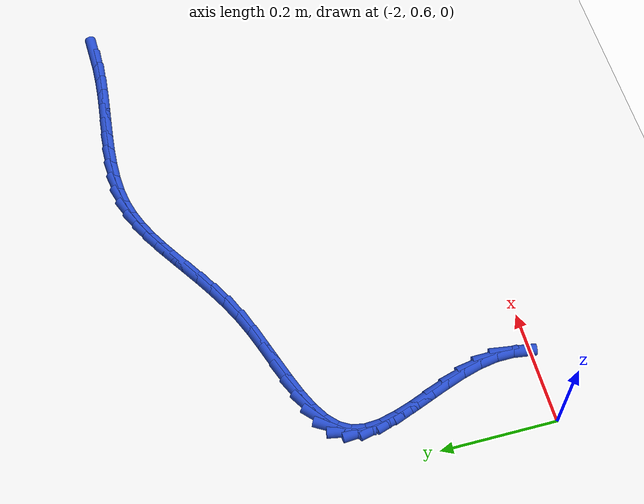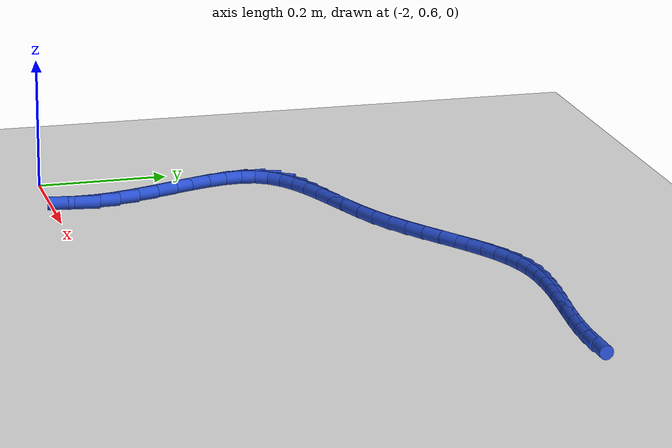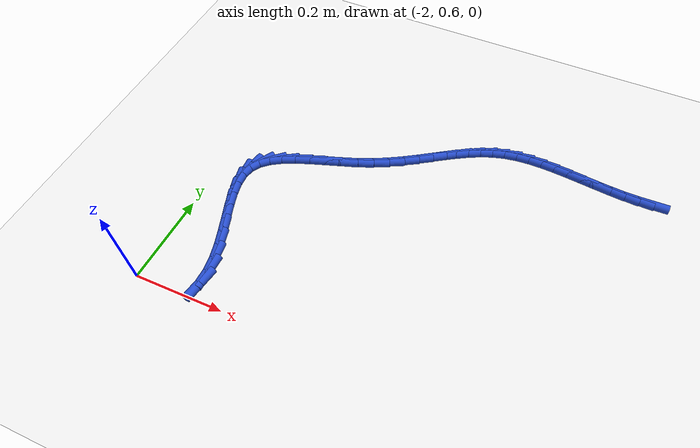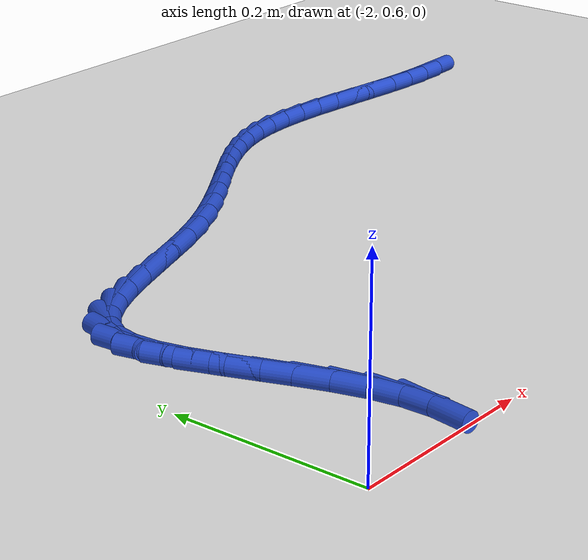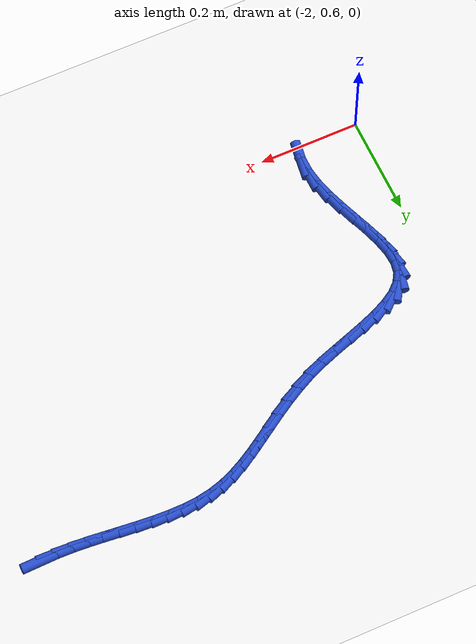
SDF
<sdf version="1.6">
 <world name="default">
  <model name="ground_plane">
   <static>1</static>
   <link name="link">
    <collision name="collision">
     <geometry><plane><normal>0 0 1</normal><size>100 100</size></plane></geometry>
     <surface><friction><ode><mu>100</mu><mu2>50</mu2></ode></friction></surface>
    </collision>
    <visual name="visual">
     <cast_shadows>0</cast_shadows>
     <geometry><plane><normal>0 0 1</normal><size>100 100</size></plane></geometry>
     <material>
      <script><uri>file://media/materials/scripts/gazebo.material</uri><name>Gazebo/WhiteGlow</name></script>
     </material>
    </visual>
   </link>
  </model>
  <model name="line">
   <link name="link_59">
    <pose>-1.0837608468522935 1.1894851191903357 0.01 0 1.57 0.027521034413831965</pose>
    <collision name="collision">
     <geometry><cylinder><radius>0.01</radius><length>0.08</length></cylinder></geometry>
    </collision>
    <visual name="visual">
     <material>
      <script><name>Gazebo/Blue</name><uri>file://media/materials/scripts/gazebo.material</uri></script>
     </material>
     <geometry><cylinder><radius>0.01</radius><length>0.08</length></cylinder></geometry>
    </visual>
   </link>
   <link name="link_60">
    <pose>-1.1149693905140685 1.1886260108769489 0.01 0 1.57 -0.02785951372487294</pose>
    <collision name="collision">
     <geometry><cylinder><radius>0.01</radius><length>0.08</length></cylinder></geometry>
    </collision>
    <visual name="visual">
     <material>
      <script><name>Gazebo/Blue</name><uri>file://media/materials/scripts/gazebo.material</uri></script>
     </material>
     <geometry><cylinder><radius>0.01</radius><length>0.08</length></cylinder></geometry>
    </visual>
   </link>
   <link name="link_61">
    <pose>-1.146480890152022 1.1895041331309557 0.01 0 1.57 -0.06808751815411529</pose>
    <collision name="collision">
     <geometry><cylinder><radius>0.01</radius><length>0.08</length></cylinder></geometry>
    </collision>
    <visual name="visual">
     <material>
      <script><name>Gazebo/Blue</name><uri>file://media/materials/scripts/gazebo.material</uri></script>
     </material>
     <geometry><cylinder><radius>0.01</radius><length>0.08</length></cylinder></geometry>
    </visual>
   </link>
   <link name="link_62">
    <pose>-1.1781575268543272 1.1916642557844286 0.01 0 1.57 -0.09324309955599905</pose>
    <collision name="collision">
     <geometry><cylinder><radius>0.01</radius><length>0.08</length></cylinder></geometry>
    </collision>
    <visual name="visual">
     <material>
      <script><name>Gazebo/Blue</name><uri>file://media/materials/scripts/gazebo.material</uri></script>
     </material>
     <geometry><cylinder><radius>0.01</radius><length>0.08</length></cylinder></geometry>
    </visual>
   </link>
   <link name="link_63">
    <pose>-1.209857335117433 1.194628640204265 0.01 0 1.57 -0.10383051137457185</pose>
    <collision name="collision">
     <geometry><cylinder><radius>0.01</radius><length>0.08</length></cylinder></geometry>
    </collision>
    <visual name="visual">
     <material>
      <script><name>Gazebo/Blue</name><uri>file://media/materials/scripts/gazebo.material</uri></script>
     </material>
     <geometry><cylinder><radius>0.01</radius><length>0.08</length></cylinder></geometry>
    </visual>
   </link>
   <link name="link_64">
    <pose>-1.2414383494377874 1.1979195477573623 0.01 0 1.57 -0.09991100285449732</pose>
    <collision name="collision">
     <geometry><cylinder><radius>0.01</radius><length>0.08</length></cylinder></geometry>
    </collision>
    <visual name="visual">
     <material>
      <script><name>Gazebo/Blue</name><uri>file://media/materials/scripts/gazebo.material</uri></script>
     </material>
     <geometry><cylinder><radius>0.01</radius><length>0.08</length></cylinder></geometry>
    </visual>
   </link>
   <link name="link_65">
    <pose>-1.2727586043118388 1.201059239810617 0.01 0 1.57 -0.0810297749593936</pose>
    <collision name="collision">
     <geometry><cylinder><radius>0.01</radius><length>0.08</length></cylinder></geometry>
    </collision>
    <visual name="visual">
     <material>
      <script><name>Gazebo/Blue</name><uri>file://media/materials/scripts/gazebo.material</uri></script>
     </material>
     <geometry><cylinder><radius>0.01</radius><length>0.08</length></cylinder></geometry>
    </visual>
   </link>
   <link name="link_66">
    <pose>-1.3036761342360377 1.203569977730928 0.01 0 1.57 -0.04619411096270264</pose>
    <collision name="collision">
     <geometry><cylinder><radius>0.01</radius><length>0.08</length></cylinder></geometry>
    </collision>
    <visual name="visual">
     <material>
      <script><name>Gazebo/Blue</name><uri>file://media/materials/scripts/gazebo.material</uri></script>
     </material>
     <geometry><cylinder><radius>0.01</radius><length>0.08</length></cylinder></geometry>
    </visual>
   </link>
   <link name="link_67">
    <pose>-1.3340489737068302 1.2049740228851908 0.01 0 1.57 0.006076362921910204</pose>
    <collision name="collision">
     <geometry><cylinder><radius>0.01</radius><length>0.08</length></cylinder></geometry>
    </collision>
    <visual name="visual">
     <material>
      <script><name>Gazebo/Blue</name><uri>file://media/materials/scripts/gazebo.material</uri></script>
     </material>
     <geometry><cylinder><radius>0.01</radius><length>0.08</length></cylinder></geometry>
    </visual>
   </link>
   <link name="link_68">
    <pose>-1.3637351572206662 1.204793636640304 0.01 0 1.57 0.07755534820530084</pose>
    <collision name="collision">
     <geometry><cylinder><radius>0.01</radius><length>0.08</length></cylinder></geometry>
    </collision>
    <visual name="visual">
     <material>
      <script><name>Gazebo/Blue</name><uri>file://media/materials/scripts/gazebo.material</uri></script>
     </material>
     <geometry><cylinder><radius>0.01</radius><length>0.08</length></cylinder></geometry>
    </visual>
   </link>
   <link name="link_69">
    <pose>-1.3925927192739944 1.202551080363164 0.01 0 1.57 0.1698423925672079</pose>
    <collision name="collision">
     <geometry><cylinder><radius>0.01</radius><length>0.08</length></cylinder></geometry>
    </collision>
    <visual name="visual">
     <material>
      <script><name>Gazebo/Blue</name><uri>file://media/materials/scripts/gazebo.material</uri></script>
     </material>
     <geometry><cylinder><radius>0.01</radius><length>0.08</length></cylinder></geometry>
    </visual>
   </link>
   <link name="link_70">
    <pose>-1.4204796943632636 1.1977686154206686 0.01 0 1.57 0.280938828629561</pose>
    <collision name="collision">
     <geometry><cylinder><radius>0.01</radius><length>0.08</length></cylinder></geometry>
    </collision>
    <visual name="visual">
     <material>
      <script><name>Gazebo/Blue</name><uri>file://media/materials/scripts/gazebo.material</uri></script>
     </material>
     <geometry><cylinder><radius>0.01</radius><length>0.08</length></cylinder></geometry>
    </visual>
   </link>
   <link name="link_71">
    <pose>-1.4472855113593137 1.1900332324352256 0.01 0 1.57 0.3856729244805571</pose>
    <collision name="collision">
     <geometry><cylinder><radius>0.01</radius><length>0.08</length></cylinder></geometry>
    </collision>
    <visual name="visual">
     <material>
      <script><name>Gazebo/Blue</name><uri>file://media/materials/scripts/gazebo.material</uri></script>
     </material>
     <geometry><cylinder><radius>0.01</radius><length>0.08</length></cylinder></geometry>
    </visual>
   </link>
   <link name="link_72">
    <pose>-1.473183998663154 1.1795183000097555 0.01 0 1.57 0.4684083320945837</pose>
    <collision name="collision">
     <geometry><cylinder><radius>0.01</radius><length>0.08</length></cylinder></geometry>
    </collision>
    <visual name="visual">
     <material>
      <script><name>Gazebo/Blue</name><uri>file://media/materials/scripts/gazebo.material</uri></script>
     </material>
     <geometry><cylinder><radius>0.01</radius><length>0.08</length></cylinder></geometry>
    </visual>
   </link>
   <link name="link_73">
    <pose>-1.498500285808388 1.1667091410339063 0.01 0 1.57 0.5279694881150337</pose>
    <collision name="collision">
     <geometry><cylinder><radius>0.01</radius><length>0.08</length></cylinder></geometry>
    </collision>
    <visual name="visual">
     <material>
      <script><name>Gazebo/Blue</name><uri>file://media/materials/scripts/gazebo.material</uri></script>
     </material>
     <geometry><cylinder><radius>0.01</radius><length>0.08</length></cylinder></geometry>
    </visual>
   </link>
   <link name="link_74">
    <pose>-1.5235609054826096 1.1520939714351712 0.01 0 1.57 0.5650337916920652</pose>
    <collision name="collision">
     <geometry><cylinder><radius>0.01</radius><length>0.08</length></cylinder></geometry>
    </collision>
    <visual name="visual">
     <material>
      <script><name>Gazebo/Blue</name><uri>file://media/materials/scripts/gazebo.material</uri></script>
     </material>
     <geometry><cylinder><radius>0.01</radius><length>0.08</length></cylinder></geometry>
    </visual>
   </link>
   <link name="link_75">
    <pose>-1.5486923903734136 1.1361610071410453 0.01 0 1.57 0.5810085819760527</pose>
    <collision name="collision">
     <geometry><cylinder><radius>0.01</radius><length>0.08</length></cylinder></geometry>
    </collision>
    <visual name="visual">
     <material>
      <script><name>Gazebo/Blue</name><uri>file://media/materials/scripts/gazebo.material</uri></script>
     </material>
     <geometry><cylinder><radius>0.01</radius><length>0.08</length></cylinder></geometry>
    </visual>
   </link>
   <link name="link_76">
    <pose>-1.5742212731683944 1.1193984640790218 0.01 0 1.57 0.5774342736609605</pose>
    <collision name="collision">
     <geometry><cylinder><radius>0.01</radius><length>0.08</length></cylinder></geometry>
    </collision>
    <visual name="visual">
     <material>
      <script><name>Gazebo/Blue</name><uri>file://media/materials/scripts/gazebo.material</uri></script>
     </material>
     <geometry><cylinder><radius>0.01</radius><length>0.08</length></cylinder></geometry>
    </visual>
   </link>
   <link name="link_77">
    <pose>-1.6004740865551474 1.102294558176595 0.01 0 1.57 0.5557631479614478</pose>
    <collision name="collision">
     <geometry><cylinder><radius>0.01</radius><length>0.08</length></cylinder></geometry>
    </collision>
    <visual name="visual">
     <material>
      <script><name>Gazebo/Blue</name><uri>file://media/materials/scripts/gazebo.material</uri></script>
     </material>
     <geometry><cylinder><radius>0.01</radius><length>0.08</length></cylinder></geometry>
    </visual>
   </link>
   <link name="link_78">
    <pose>-1.6277773632212666 1.085337505361258 0.01 0 1.57 0.5173900393681569</pose>
    <collision name="collision">
     <geometry><cylinder><radius>0.01</radius><length>0.08</length></cylinder></geometry>
    </collision>
    <visual name="visual">
     <material>
      <script><name>Gazebo/Blue</name><uri>file://media/materials/scripts/gazebo.material</uri></script>
     </material>
     <geometry><cylinder><radius>0.01</radius><length>0.08</length></cylinder></geometry>
    </visual>
   </link>
   <link name="link_79">
    <pose>-1.656457635854347 1.0690155215605055 0.01 0 1.57 0.4638265887498768</pose>
    <collision name="collision">
     <geometry><cylinder><radius>0.01</radius><length>0.08</length></cylinder></geometry>
    </collision>
    <visual name="visual">
     <material>
      <script><name>Gazebo/Blue</name><uri>file://media/materials/scripts/gazebo.material</uri></script>
     </material>
     <geometry><cylinder><radius>0.01</radius><length>0.08</length></cylinder></geometry>
    </visual>
   </link>
   <link name="link_80">
    <pose>-1.6868414371419824 1.053816822701831 0.01 0 1.57 0.39898774823349337</pose>
    <collision name="collision">
     <geometry><cylinder><radius>0.01</radius><length>0.08</length></cylinder></geometry>
    </collision>
    <visual name="visual">
     <material>
      <script><name>Gazebo/Blue</name><uri>file://media/materials/scripts/gazebo.material</uri></script>
     </material>
     <geometry><cylinder><radius>0.01</radius><length>0.08</length></cylinder></geometry>
    </visual>
   </link>
   <link name="link_81">
    <pose>-1.719188342139878 1.0401793503189127 0.01 0 1.57 0.34856916180092057</pose>
    <collision name="collision">
     <geometry><cylinder><radius>0.01</radius><length>0.08</length></cylinder></geometry>
    </collision>
    <visual name="visual">
     <material>
      <script><name>Gazebo/Blue</name><uri>file://media/materials/scripts/gazebo.material</uri></script>
     </material>
     <geometry><cylinder><radius>0.01</radius><length>0.08</length></cylinder></geometry>
    </visual>
   </link>
   <link name="link_82">
    <pose>-1.75292816920245 1.0279180323472181 0.01 0 1.57 0.32590989201044224</pose>
    <collision name="collision">
     <geometry><cylinder><radius>0.01</radius><length>0.08</length></cylinder></geometry>
    </collision>
    <visual name="visual">
     <material>
      <script><name>Gazebo/Blue</name><uri>file://media/materials/scripts/gazebo.material</uri></script>
     </material>
     <geometry><cylinder><radius>0.01</radius><length>0.08</length></cylinder></geometry>
    </visual>
   </link>
   <link name="link_83">
    <pose>-1.786929960382765 1.0164267440681607 0.01 0 1.57 0.32973304284462196</pose>
    <collision name="collision">
     <geometry><cylinder><radius>0.01</radius><length>0.08</length></cylinder></geometry>
    </collision>
    <visual name="visual">
     <material>
      <script><name>Gazebo/Blue</name><uri>file://media/materials/scripts/gazebo.material</uri></script>
     </material>
     <geometry><cylinder><radius>0.01</radius><length>0.08</length></cylinder></geometry>
    </visual>
   </link>
   <link name="link_84">
    <pose>-1.8200521985718534 1.0050914325336804 0.01 0 1.57 0.36244284294760415</pose>
    <collision name="collision">
     <geometry><cylinder><radius>0.01</radius><length>0.08</length></cylinder></geometry>
    </collision>
    <visual name="visual">
     <material>
      <script><name>Gazebo/Blue</name><uri>file://media/materials/scripts/gazebo.material</uri></script>
     </material>
     <geometry><cylinder><radius>0.01</radius><length>0.08</length></cylinder></geometry>
    </visual>
   </link>
   <link name="link_85">
    <pose>-1.8511533666607445 0.993298044795718 0.01 0 1.57 0.4315454453440406</pose>
    <collision name="collision">
     <geometry><cylinder><radius>0.01</radius><length>0.08</length></cylinder></geometry>
    </collision>
    <visual name="visual">
     <material>
      <script><name>Gazebo/Blue</name><uri>file://media/materials/scripts/gazebo.material</uri></script>
     </material>
     <geometry><cylinder><radius>0.01</radius><length>0.08</length></cylinder></geometry>
    </visual>
   </link>
   <link name="link_86">
    <pose>-1.8790919475404686 0.9804325279062152 0.01 0 1.57 0.5518822259734445</pose>
    <collision name="collision">
     <geometry><cylinder><radius>0.01</radius><length>0.08</length></cylinder></geometry>
    </collision>
    <visual name="visual">
     <material>
      <script><name>Gazebo/Blue</name><uri>file://media/materials/scripts/gazebo.material</uri></script>
     </material>
     <geometry><cylinder><radius>0.01</radius><length>0.08</length></cylinder></geometry>
    </visual>
   </link>
   <link name="link_87">
    <pose>-1.9027264241020554 0.9658808289171114 0.01 0 1.57 0.7472633785163912</pose>
    <collision name="collision">
     <geometry><cylinder><radius>0.01</radius><length>0.08</length></cylinder></geometry>
    </collision>
    <visual name="visual">
     <material>
      <script><name>Gazebo/Blue</name><uri>file://media/materials/scripts/gazebo.material</uri></script>
     </material>
     <geometry><cylinder><radius>0.01</radius><length>0.08</length></cylinder></geometry>
    </visual>
   </link>
   <link name="link_88">
    <pose>-1.9209152792365358 0.9490288948803478 0.01 0 1.57 1.0400282239132286</pose>
    <collision name="collision">
     <geometry><cylinder><radius>0.01</radius><length>0.08</length></cylinder></geometry>
    </collision>
    <visual name="visual">
     <material>
      <script><name>Gazebo/Blue</name><uri>file://media/materials/scripts/gazebo.material</uri></script>
     </material>
     <geometry><cylinder><radius>0.01</radius><length>0.08</length></cylinder></geometry>
    </visual>
   </link>
   <link name="link_89">
    <pose>-1.9325170377188372 0.9292626917431306 0.01 0 1.57 1.3839415310409848</pose>
    <collision name="collision">
     <geometry><cylinder><radius>0.01</radius><length>0.08</length></cylinder></geometry>
    </collision>
    <visual name="visual">
     <material>
      <script><name>Gazebo/Blue</name><uri>file://media/materials/scripts/gazebo.material</uri></script>
     </material>
     <geometry><cylinder><radius>0.01</radius><length>0.08</length></cylinder></geometry>
    </visual>
   </link>
   <link name="link_90">
    <pose>-1.9368793821560053 0.9061888613554766 0.01 0 1.57 -1.5007365801726607</pose>
    <collision name="collision">
     <geometry><cylinder><radius>0.01</radius><length>0.08</length></cylinder></geometry>
    </collision>
    <visual name="visual">
     <material>
      <script><name>Gazebo/Blue</name><uri>file://media/materials/scripts/gazebo.material</uri></script>
     </material>
     <geometry><cylinder><radius>0.01</radius><length>0.08</length></cylinder></geometry>
    </visual>
   </link>
   <link name="link_91">
    <pose>-1.9350544294846153 0.880182974448337 0.01 0 1.57 -1.342779543612798</pose>
    <collision name="collision">
     <geometry><cylinder><radius>0.01</radius><length>0.08</length></cylinder></geometry>
    </collision>
    <visual name="visual">
     <material>
      <script><name>Gazebo/Blue</name><uri>file://media/materials/scripts/gazebo.material</uri></script>
     </material>
     <geometry><cylinder><radius>0.01</radius><length>0.08</length></cylinder></geometry>
    </visual>
   </link>
   <link name="link_92">
    <pose>-1.9284653020776714 0.8517879750507196 0.01 0 1.57 -1.2535227624586973</pose>
    <collision name="collision">
     <geometry><cylinder><radius>0.01</radius><length>0.08</length></cylinder></geometry>
    </collision>
    <visual name="visual">
     <material>
      <script><name>Gazebo/Blue</name><uri>file://media/materials/scripts/gazebo.material</uri></script>
     </material>
     <geometry><cylinder><radius>0.01</radius><length>0.08</length></cylinder></geometry>
    </visual>
   </link>
   <link name="link_93">
    <pose>-1.918535122308179 0.8215468071916325 0.01 0 1.57 -1.2114987323696413</pose>
    <collision name="collision">
     <geometry><cylinder><radius>0.01</radius><length>0.08</length></cylinder></geometry>
    </collision>
    <visual name="visual">
     <material>
      <script><name>Gazebo/Blue</name><uri>file://media/materials/scripts/gazebo.material</uri></script>
     </material>
     <geometry><cylinder><radius>0.01</radius><length>0.08</length></cylinder></geometry>
    </visual>
   </link>
   <link name="link_94">
    <pose>-1.906687012549143 0.7900024149000846 0.01 0 1.57 -1.2058344307371007</pose>
    <collision name="collision">
     <geometry><cylinder><radius>0.01</radius><length>0.08</length></cylinder></geometry>
    </collision>
    <visual name="visual">
     <material>
      <script><name>Gazebo/Blue</name><uri>file://media/materials/scripts/gazebo.material</uri></script>
     </material>
     <geometry><cylinder><radius>0.01</radius><length>0.08</length></cylinder></geometry>
    </visual>
   </link>
   <link name="link_95">
    <pose>-1.8943440951735684 0.7576977422050836 0.01 0 1.57 -1.2332479599679553</pose>
    <collision name="collision">
     <geometry><cylinder><radius>0.01</radius><length>0.08</length></cylinder></geometry>
    </collision>
    <visual name="visual">
     <material>
      <script><name>Gazebo/Blue</name><uri>file://media/materials/scripts/gazebo.material</uri></script>
     </material>
     <geometry><cylinder><radius>0.01</radius><length>0.08</length></cylinder></geometry>
    </visual>
   </link>
   <link name="link_96">
    <pose>-1.8829294925544604 0.7251757331356375 0.01 0 1.57 -1.2964007134508755</pose>
    <collision name="collision">
     <geometry><cylinder><radius>0.01</radius><length>0.08</length></cylinder></geometry>
    </collision>
    <visual name="visual">
     <material>
      <script><name>Gazebo/Blue</name><uri>file://media/materials/scripts/gazebo.material</uri></script>
     </material>
     <geometry><cylinder><radius>0.01</radius><length>0.08</length></cylinder></geometry>
    </visual>
   </link>
   <link name="link_97">
    <pose>-1.8738663270648246 0.6929793317207555 0.01 0 1.57 -1.4035582546523928</pose>
    <collision name="collision">
     <geometry><cylinder><radius>0.01</radius><length>0.08</length></cylinder></geometry>
    </collision>
    <visual name="visual">
     <material>
      <script><name>Gazebo/Blue</name><uri>file://media/materials/scripts/gazebo.material</uri></script>
     </material>
     <geometry><cylinder><radius>0.01</radius><length>0.08</length></cylinder></geometry>
    </visual>
   </link>
   <link name="link_98">
    <pose>-1.8685777207498893 0.6616514818707582 0.01 0 1.57 -1.55655928122619</pose>
    <collision name="collision">
     <geometry><cylinder><radius>0.01</radius><length>0.08</length></cylinder></geometry>
    </collision>
    <visual name="visual">
     <material>
      <script><name>Gazebo/Blue</name><uri>file://media/materials/scripts/gazebo.material</uri></script>
     </material>
     <geometry><cylinder><radius>0.01</radius><length>0.08</length></cylinder></geometry>
    </visual>
   </link>
   <link name="link_99">
    <pose>-1.8681500352798157 0.6316131869682756 0.01 0 1.57 1.4255676285784626</pose>
    <collision name="collision">
     <geometry><cylinder><radius>0.01</radius><length>0.08</length></cylinder></geometry>
    </collision>
    <visual name="visual">
     <material>
      <script><name>Gazebo/Blue</name><uri>file://media/materials/scripts/gazebo.material</uri></script>
     </material>
     <geometry><cylinder><radius>0.01</radius><length>0.08</length></cylinder></geometry>
    </visual>
   </link>
  </model>
 </world>
</sdf>
